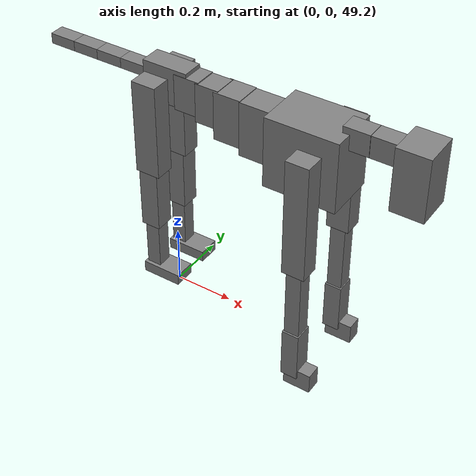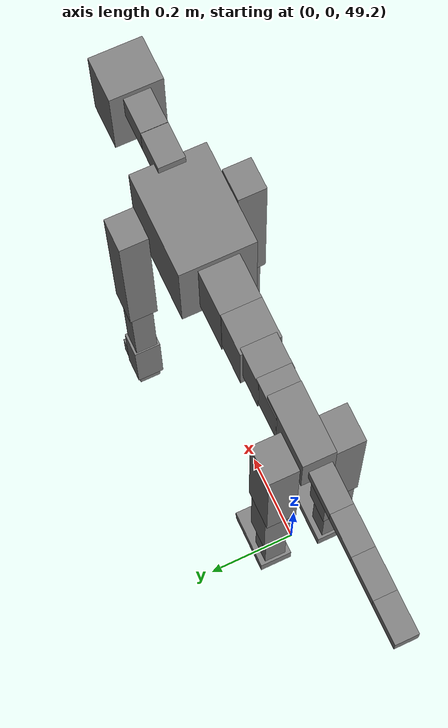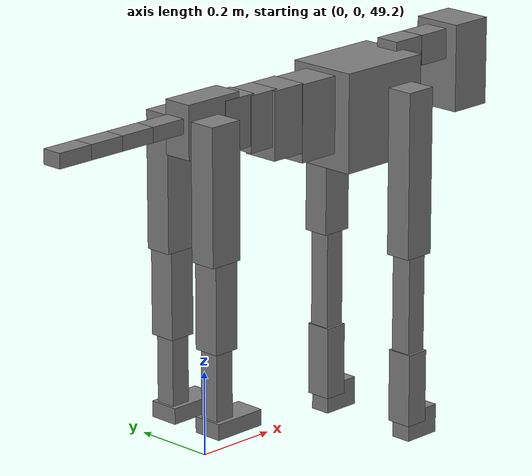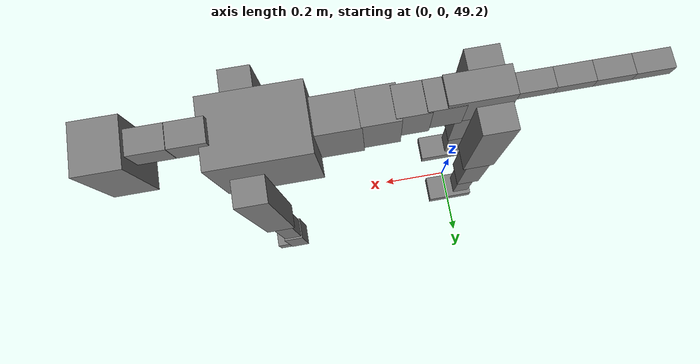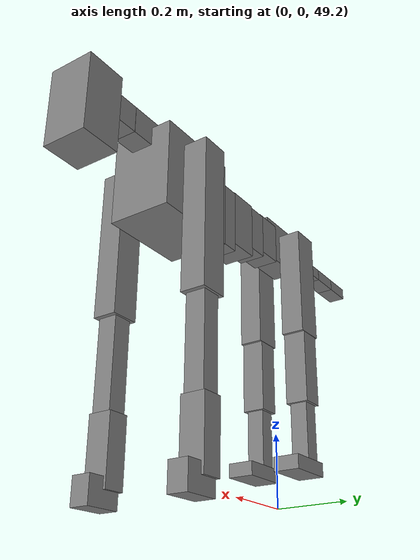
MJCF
<mujoco model="dog">

    <default>
        <joint armature="0.02" stiffness="1" damping="0.2" limited="true"/>
        <geom condim="3" friction="1 0.05 0.05" margin="0.01"/>
        <motor ctrllimited="true" ctrlrange="-1.0 1.0" forcelimited="true" gear="50"/>
    </default>

    <compiler inertiafromgeom="true" angle="radian"/>

    <option timestep="0.016" iterations="50" tolerance="1e-10" solver="Newton" jacobian="dense" cone="pyramidal"/>

    <size nconmax="20000" njmax="60000" nstack="5000000"/>
    <visual>
        <map force="0.1" zfar="30"/>
        <rgba haze="0.15 0.25 0.35 1"/>
        <quality shadowsize="2048"/>
        <global offwidth="800" offheight="800"/>
    </visual>

    <asset>
        <texture type="skybox" builtin="gradient" rgb1="0.3 0.5 0.7" rgb2="0 0 0" width="512" height="512"/>
        <texture name="texplane" type="2d" builtin="checker" rgb1=".2 .3 .4" rgb2=".1 0.15 0.2" width="512" height="512"
                 mark="cross" markrgb=".8 .8 .8"/>
        <texture name="texgeom" type="cube" builtin="flat" mark="cross" width="127" height="1278" rgb1="0.8 0.6 0.4"
                 rgb2="0.8 0.6 0.4" markrgb="1 1 1" random="0.01"/>

        <material name="matplane" reflectance="0.3" texture="texplane" texrepeat="1 1" texuniform="true"/>
        <material name="matgeom" texture="texgeom" texuniform="true" rgba="0.8 0.6 .4 1"/>
    </asset>

    <worldbody>
        <geom name="floor" pos="0 0 0" size="0 0 .25" type="plane" material="matplane" condim="3"/>

        <light directional="false" diffuse=".2 .2 .2" specular="0 0 0" pos="0 0 5" dir="0 0 -1" castshadow="false"/>
        <light mode="targetbodycom" target="torso" directional="false" diffuse=".8 .8 .8" specular="0.3 0.3 0.3"
               pos="0 0 4.0" dir="0 0 -1"/>

        <body name="root" pos="0 0 50">
            <freejoint name="root_1"/>
            <geom type="box" pos="0 0 -0.02" size="0.0774  0.0358  0.063" density="2030"/>

            <body name="spine1" pos="0.054 0 0">
                <joint name="spine1_y" axis="0 1 0" range="0 0.7" limited="true"/>
                <geom type="box" pos="0.02375 0 -0.03" size="0.04375  0.0375  0.05985" density="2030"/>

                <body name="spine2" pos="0.0612 0 0">
                    <joint name="spine2_y" axis="0 1 0" range="-0.15 0.15" limited="true"/>
                    <geom type="box" pos="0.03555  0  -0.04" size="0.04055  0.039  0.06615" density="2030"/>

                    <body name="spine3" pos="0.0730 0 0">
                        <joint name="spine3_y" axis="0 1 0" range="-0.15 0.15" limited="true"/>
                        <geom type="box" pos="0.03555  0  -0.057" size="0.04555  0.0445  0.081" density="2030"/>

                        <body name="spine4" pos="0.0780 0 0">
                            <joint name="spine4_y" axis="0 1 0" range="-0.15 0.15" limited="true"/>
                            <geom type="box" pos="0.05265  0  -0.07" size="0.05265  0.045  0.09135" density="2030"/>

                            <body name="torso" pos="0.1082 0 0">
                                <joint name="torso_y" axis="0 1 0" range="-0.15 0.15" limited="true"/>
                                <geom type="box" pos="0.11925  0  -0.085" size="0.11925  0.085  0.11745"
                                      density="2030"/>

                                <body name="neck1" pos="0.2160  0   0.0180">
                                    <joint name="neck1_y" axis="0 1 0" range="-1.2  -1" limited="true"/>
                                    <geom type="box" pos="0.0423  0  0" size="0.0423  0.03  0.036" density="2325"/>

                                    <body name="neck2" pos="0.0853  0  0">
                                        <joint name="neck2_y" axis="0 1 0" range="0.1  0" limited="true"/>
                                        <geom type="box" pos="0.0423  0  0" size="0.0423  0.03  0.036" density="2325"/>

                                        <body name="head" pos="0.0853  0  0">
                                            <joint name="head_y" axis="0 1 0" range="-0.3  -0.2" limited="true"/>
                                            <geom type="box" pos="0.0531  0  -0.055" size="0.0531  0.06  0.1044"
                                                  density="4030"/>

                                        </body>
                                    </body>
                                </body>

                                <body name="front_shoulder" pos="0.156  0   -0.0480">
                                    <joint name="front_shoulder_y" axis="0 1 0" range="-1 1.5" limited="true"/>
                                    <geom type="box" pos="0 0.13 -0.1715" size="0.0379  0.0324  0.1982" density="1158"/>
                                    <geom type="box" pos="0 -0.13 -0.1715" size="0.0379  0.0324  0.1982"
                                          density="1158"/>

                                    <body name="front_elbow" pos="0  0  -0.3431">
                                        <joint name="front_elbow_y" axis="0 1 0" range="-2 0" limited="true"/>
                                        <geom type="box" pos="0 0.13 -0.1371" size="0.0252  0.0257  0.1371"
                                              density="1081"/>
                                        <geom type="box" pos="0 -0.13 -0.1371" size="0.0252  0.0257  0.1371"
                                              density="1081"/>

                                        <body name="front_wrist" pos="0  0  -0.2742">
                                            <joint name="front_wrist_y" axis="0 1 0" range="-0.2 0" limited="true"/>
                                            <geom type="box" pos="0 0.13 -0.0746" size="0.0284  0.0316  0.0877"
                                                  density="1664"/>
                                            <geom type="box" pos="0 -0.13 -0.0746" size="0.0284  0.0316  0.0877"
                                                  density="1664"/>

                                            <body name="front_finger_end" pos="0  0  -0.1491">
                                                <joint name="front_finger_y" axis="0 1 0" range="-0.4 1"
                                                       limited="true"/>
                                                <geom type="box" pos="0.0253  0.13  -0.0193"
                                                      size="0.0464  0.0253  0.0343" density="1515"/>
                                                <geom type="box" pos="0.0253  -0.13  -0.0193"
                                                      size="0.0464  0.0253  0.0343" density="1515"/>

                                            </body>

                                        </body>
                                    </body>
                                </body>

                            </body>
                        </body>
                    </body>
                </body>
            </body>

            <body name="back_hip" pos="-0.03 0 -0.018">
                <joint name="back_hip_y" axis="0 1 0" range="-1.5 0.3" limited="true"/>
                <geom type="box" pos="0 0.07 -0.1374" size="0.0419  0.0328  0.1602" density="1154"/>
                <geom type="box" pos="0 -0.07 -0.1374" size="0.0419  0.0328  0.1602" density="1154"/>

                <body name="back_knee" pos="0  0  -0.2748">
                    <joint name="back_knee_y" axis="0 1 0" range="0 2.8" limited="true"/>
                    <geom type="box" pos="0 0.07 -0.1058" size="0.0326  0.0321  0.1213" density="1227"/>
                    <geom type="box" pos="0 -0.07 -0.1058" size="0.0326  0.0321  0.1213" density="1227"/>

                    <body name="back_ankle" pos="0  0  -0.2116">
                        <joint name="back_ankle_y" axis="0 1 0" range="-2.2 0" limited="true"/>
                        <geom type="box" pos="0 0.07 -0.0957" size="0.0243  0.0243  0.1070" density="1284"/>
                        <geom type="box" pos="0 -0.07 -0.0957" size="0.0243  0.0243  0.1070" density="1284"/>

                        <body name="back_toe_end" pos="0  0  -0.1914">
                            <joint name="back_toe_y" axis="0 1 0" range="-0.4 1" limited="true"/>
                            <geom type="box" pos="0.0364  0.07  -0.0040" size="0.0668  0.0364  0.0190" density="1515"/>
                            <geom type="box" pos="0.0364  -0.07  -0.0040" size="0.0668  0.0364  0.0190" density="1515"/>

                        </body>
                    </body>
                </body>
            </body>

            <body name="tail1" pos="-0.074 0 -0.006">
                <joint name="tail1_y" axis="0 1 0" range="-0.2 0.2" limited="true"/>
                <geom type="box" pos="-0.0536  0  0" size="0.045  0.025  0.0175" density="1587"/>

                <body name="tail2" pos="-0.09 0 0">
                    <joint name="tail2_y" axis="0 1 0" range="-0.2 0.2" limited="true"/>
                    <geom type="box" pos="-0.0536  0  0" size="0.045  0.025  0.0175" density="1587"/>

                    <body name="tail3" pos="-0.09 0 0">
                        <joint name="tail3_y" axis="0 1 0" range="-0.2 0.2" limited="true"/>
                        <geom type="box" pos="-0.0536  0  0" size="0.045  0.025  0.0175" density="1587"/>

                        <body name="tail4" pos="-0.09 0 0">
                            <joint name="tail4_y" axis="0 1 0" range="-0.2 0.2" limited="true"/>
                            <geom type="box" pos="-0.0536  0  0" size="0.045  0.025  0.0175" density="1587"/>

                        </body>
                    </body>
                </body>
            </body>
        </body>
    </worldbody>

    <actuator>
        <motor joint="spine1_y" forcerange="-150 150     "/>
        <motor joint="spine2_y" forcerange="-150 150     "/>
        <motor joint="spine3_y" forcerange="-150 150     "/>
        <motor joint="spine4_y" forcerange="-150 150     "/>
        <motor joint="torso_y" forcerange="-150 150     "/>
        <motor joint="neck1_y" forcerange="-100 100       "/>
        <motor joint="neck2_y" forcerange="-100 100       "/>
        <motor joint="head_y" forcerange="-150 150       "/>
        <motor joint="front_shoulder_y" forcerange="-164.02 151.66"/>
        <motor joint="front_elbow_y" forcerange="-163.14 123.97"/>
        <motor joint="front_wrist_y" forcerange="-144.52 108.09"/>
        <motor joint="front_finger_y" forcerange="-32.52 62.58"/>
        <motor joint="back_hip_y" forcerange="-346.37 291.63"/>
        <motor joint="back_knee_y" forcerange="-377.23 290.03"/>
        <motor joint="back_angle_y" forcerange="-114.44 173.59"/>
        <motor joint="back_toe_y" forcerange="-73.68 137.83"/>
        <motor joint="tail1_y" forcerange="-50 50     "/>
        <motor joint="tail2_y" forcerange="-50 50     "/>
        <motor joint="tail3_y" forcerange="-50 50     "/>
        <motor joint="tail4_y" forcerange="-50 50     "/>
    </actuator>
</mujoco>
